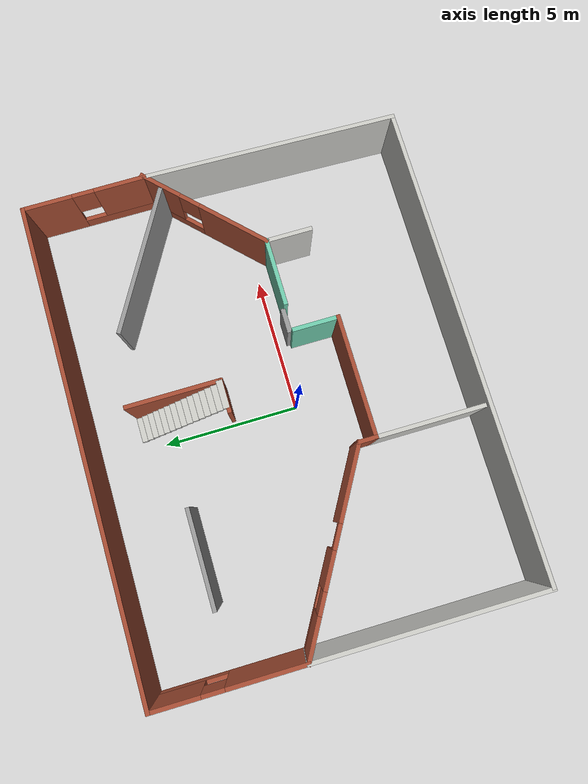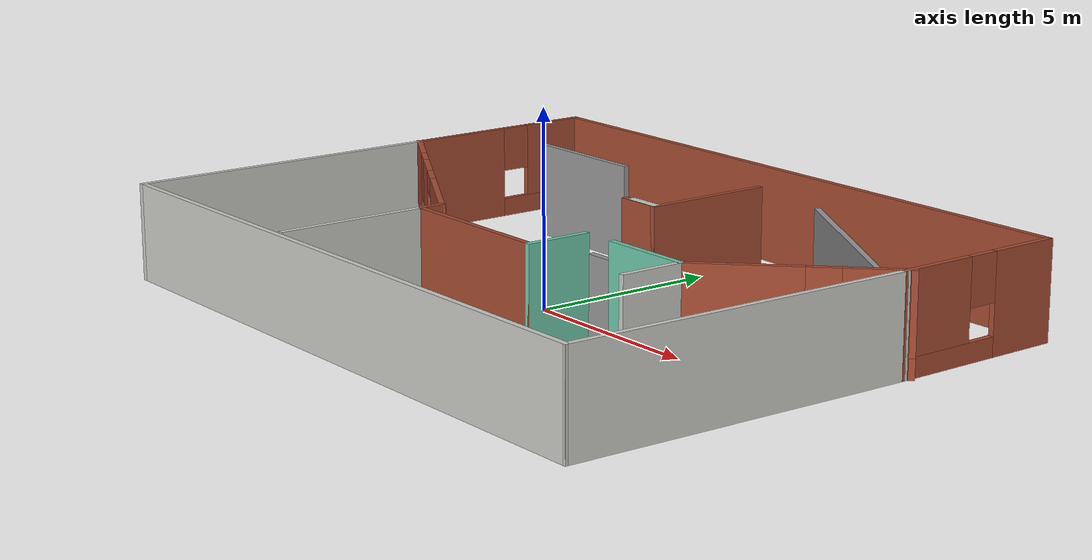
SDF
<?xml version='1.0'?>
<sdf version='1.7'>
  <model name='CommandCenter'>
    <pose>0.445014 0.613985 0 0 -0 0</pose>
    <link name='Door_0'>
      <collision name='Door_0_Collision'>
        <geometry>
          <box>
            <size>0.9 0.17 2</size>
          </box>
        </geometry>
        <pose>0 0 1 0 -0 0</pose>
      </collision>
      <visual name='Door_0_Visual'>
        <pose>0 0 1 0 -0 0</pose>
        <geometry>
          <box>
            <size>0.9 0.17 2</size>
          </box>
        </geometry>
        <material>
          <script>
            <uri>file://media/materials/scripts/gazebo.material</uri>
            <name>Gazebo/Grey</name>
          </script>
        </material>
      </visual>
      <pose>2.38096 -1.04529 0 0 -0 0</pose>
    </link>
    <link name='Stairs_0'>
      <visual name='Stairs_0_Visual_0'>
        <pose>0.377201 5.07332 0.083333 0 -0 0</pose>
        <geometry>
          <box>
            <size>1 0.233333 0.166667</size>
          </box>
        </geometry>
        <material>
          <script>
            <uri>file://media/materials/scripts/gazebo.material</uri>
            <name>Gazebo/CeilingTiled</name>
          </script>
          <ambient>1 1 1 1</ambient>
        </material>
        <meta>
          <layer>0</layer>
        </meta>
      </visual>
      <collision name='Stairs_0_Collision_0'>
        <geometry>
          <box>
            <size>1 0.233333 0.166667</size>
          </box>
        </geometry>
        <pose>0.377201 5.07332 0.083333 0 -0 0</pose>
      </collision>
      <visual name='Stairs_0_Visual_1'>
        <pose>0.377201 4.83999 0.25 0 -0 0</pose>
        <geometry>
          <box>
            <size>1 0.233333 0.166667</size>
          </box>
        </geometry>
        <material>
          <script>
            <uri>file://media/materials/scripts/gazebo.material</uri>
            <name>Gazebo/CeilingTiled</name>
          </script>
          <ambient>1 1 1 1</ambient>
        </material>
        <meta>
          <layer>0</layer>
        </meta>
      </visual>
      <collision name='Stairs_0_Collision_1'>
        <geometry>
          <box>
            <size>1 0.233333 0.166667</size>
          </box>
        </geometry>
        <pose>0.377201 4.83999 0.25 0 -0 0</pose>
      </collision>
      <visual name='Stairs_0_Visual_2'>
        <pose>0.377201 4.60666 0.416667 0 -0 0</pose>
        <geometry>
          <box>
            <size>1 0.233333 0.166667</size>
          </box>
        </geometry>
        <material>
          <script>
            <uri>file://media/materials/scripts/gazebo.material</uri>
            <name>Gazebo/CeilingTiled</name>
          </script>
          <ambient>1 1 1 1</ambient>
        </material>
        <meta>
          <layer>0</layer>
        </meta>
      </visual>
      <collision name='Stairs_0_Collision_2'>
        <geometry>
          <box>
            <size>1 0.233333 0.166667</size>
          </box>
        </geometry>
        <pose>0.377201 4.60666 0.416667 0 -0 0</pose>
      </collision>
      <visual name='Stairs_0_Visual_3'>
        <pose>0.377201 4.37333 0.583333 0 -0 0</pose>
        <geometry>
          <box>
            <size>1 0.233333 0.166667</size>
          </box>
        </geometry>
        <material>
          <script>
            <uri>file://media/materials/scripts/gazebo.material</uri>
            <name>Gazebo/CeilingTiled</name>
          </script>
          <ambient>1 1 1 1</ambient>
        </material>
        <meta>
          <layer>0</layer>
        </meta>
      </visual>
      <collision name='Stairs_0_Collision_3'>
        <geometry>
          <box>
            <size>1 0.233333 0.166667</size>
          </box>
        </geometry>
        <pose>0.377201 4.37333 0.583333 0 -0 0</pose>
      </collision>
      <visual name='Stairs_0_Visual_4'>
        <pose>0.377201 4.13999 0.75 0 -0 0</pose>
        <geometry>
          <box>
            <size>1 0.233333 0.166667</size>
          </box>
        </geometry>
        <material>
          <script>
            <uri>file://media/materials/scripts/gazebo.material</uri>
            <name>Gazebo/CeilingTiled</name>
          </script>
          <ambient>1 1 1 1</ambient>
        </material>
        <meta>
          <layer>0</layer>
        </meta>
      </visual>
      <collision name='Stairs_0_Collision_4'>
        <geometry>
          <box>
            <size>1 0.233333 0.166667</size>
          </box>
        </geometry>
        <pose>0.377201 4.13999 0.75 0 -0 0</pose>
      </collision>
      <visual name='Stairs_0_Visual_5'>
        <pose>0.377201 3.90666 0.916667 0 -0 0</pose>
        <geometry>
          <box>
            <size>1 0.233333 0.166667</size>
          </box>
        </geometry>
        <material>
          <script>
            <uri>file://media/materials/scripts/gazebo.material</uri>
            <name>Gazebo/CeilingTiled</name>
          </script>
          <ambient>1 1 1 1</ambient>
        </material>
        <meta>
          <layer>0</layer>
        </meta>
      </visual>
      <collision name='Stairs_0_Collision_5'>
        <geometry>
          <box>
            <size>1 0.233333 0.166667</size>
          </box>
        </geometry>
        <pose>0.377201 3.90666 0.916667 0 -0 0</pose>
      </collision>
      <visual name='Stairs_0_Visual_6'>
        <pose>0.377201 3.67333 1.08333 0 -0 0</pose>
        <geometry>
          <box>
            <size>1 0.233333 0.166667</size>
          </box>
        </geometry>
        <material>
          <script>
            <uri>file://media/materials/scripts/gazebo.material</uri>
            <name>Gazebo/CeilingTiled</name>
          </script>
          <ambient>1 1 1 1</ambient>
        </material>
        <meta>
          <layer>0</layer>
        </meta>
      </visual>
      <collision name='Stairs_0_Collision_6'>
        <geometry>
          <box>
            <size>1 0.233333 0.166667</size>
          </box>
        </geometry>
        <pose>0.377201 3.67333 1.08333 0 -0 0</pose>
      </collision>
      <visual name='Stairs_0_Visual_7'>
        <pose>0.377201 3.43999 1.25 0 -0 0</pose>
        <geometry>
          <box>
            <size>1 0.233333 0.166667</size>
          </box>
        </geometry>
        <material>
          <script>
            <uri>file://media/materials/scripts/gazebo.material</uri>
            <name>Gazebo/CeilingTiled</name>
          </script>
          <ambient>1 1 1 1</ambient>
        </material>
        <meta>
          <layer>0</layer>
        </meta>
      </visual>
      <collision name='Stairs_0_Collision_7'>
        <geometry>
          <box>
            <size>1 0.233333 0.166667</size>
          </box>
        </geometry>
        <pose>0.377201 3.43999 1.25 0 -0 0</pose>
      </collision>
      <visual name='Stairs_0_Visual_8'>
        <pose>0.377201 3.20666 1.41667 0 -0 0</pose>
        <geometry>
          <box>
            <size>1 0.233333 0.166667</size>
          </box>
        </geometry>
        <material>
          <script>
            <uri>file://media/materials/scripts/gazebo.material</uri>
            <name>Gazebo/CeilingTiled</name>
          </script>
          <ambient>1 1 1 1</ambient>
        </material>
        <meta>
          <layer>0</layer>
        </meta>
      </visual>
      <collision name='Stairs_0_Collision_8'>
        <geometry>
          <box>
            <size>1 0.233333 0.166667</size>
          </box>
        </geometry>
        <pose>0.377201 3.20666 1.41667 0 -0 0</pose>
      </collision>
      <visual name='Stairs_0_Visual_9'>
        <pose>0.377201 2.97332 1.58333 0 -0 0</pose>
        <geometry>
          <box>
            <size>1 0.233333 0.166667</size>
          </box>
        </geometry>
        <material>
          <script>
            <uri>file://media/materials/scripts/gazebo.material</uri>
            <name>Gazebo/CeilingTiled</name>
          </script>
          <ambient>1 1 1 1</ambient>
        </material>
        <meta>
          <layer>0</layer>
        </meta>
      </visual>
      <collision name='Stairs_0_Collision_9'>
        <geometry>
          <box>
            <size>1 0.233333 0.166667</size>
          </box>
        </geometry>
        <pose>0.377201 2.97332 1.58333 0 -0 0</pose>
      </collision>
      <visual name='Stairs_0_Visual_10'>
        <pose>0.377201 2.73999 1.75 0 -0 0</pose>
        <geometry>
          <box>
            <size>1 0.233333 0.166667</size>
          </box>
        </geometry>
        <material>
          <script>
            <uri>file://media/materials/scripts/gazebo.material</uri>
            <name>Gazebo/CeilingTiled</name>
          </script>
          <ambient>1 1 1 1</ambient>
        </material>
        <meta>
          <layer>0</layer>
        </meta>
      </visual>
      <collision name='Stairs_0_Collision_10'>
        <geometry>
          <box>
            <size>1 0.233333 0.166667</size>
          </box>
        </geometry>
        <pose>0.377201 2.73999 1.75 0 -0 0</pose>
      </collision>
      <visual name='Stairs_0_Visual_11'>
        <pose>0.377201 2.50666 1.91667 0 -0 0</pose>
        <geometry>
          <box>
            <size>1 0.233333 0.166667</size>
          </box>
        </geometry>
        <material>
          <script>
            <uri>file://media/materials/scripts/gazebo.material</uri>
            <name>Gazebo/CeilingTiled</name>
          </script>
          <ambient>1 1 1 1</ambient>
        </material>
        <meta>
          <layer>0</layer>
        </meta>
      </visual>
      <collision name='Stairs_0_Collision_11'>
        <geometry>
          <box>
            <size>1 0.233333 0.166667</size>
          </box>
        </geometry>
        <pose>0.377201 2.50666 1.91667 0 -0 0</pose>
      </collision>
      <visual name='Stairs_0_Visual_12'>
        <pose>0.377201 2.27332 2.08333 0 -0 0</pose>
        <geometry>
          <box>
            <size>1 0.233333 0.166667</size>
          </box>
        </geometry>
        <material>
          <script>
            <uri>file://media/materials/scripts/gazebo.material</uri>
            <name>Gazebo/CeilingTiled</name>
          </script>
          <ambient>1 1 1 1</ambient>
        </material>
        <meta>
          <layer>0</layer>
        </meta>
      </visual>
      <collision name='Stairs_0_Collision_12'>
        <geometry>
          <box>
            <size>1 0.233333 0.166667</size>
          </box>
        </geometry>
        <pose>0.377201 2.27332 2.08333 0 -0 0</pose>
      </collision>
      <visual name='Stairs_0_Visual_13'>
        <pose>0.377201 2.03999 2.25 0 -0 0</pose>
        <geometry>
          <box>
            <size>1 0.233333 0.166667</size>
          </box>
        </geometry>
        <material>
          <script>
            <uri>file://media/materials/scripts/gazebo.material</uri>
            <name>Gazebo/CeilingTiled</name>
          </script>
          <ambient>1 1 1 1</ambient>
        </material>
        <meta>
          <layer>0</layer>
        </meta>
      </visual>
      <collision name='Stairs_0_Collision_13'>
        <geometry>
          <box>
            <size>1 0.233333 0.166667</size>
          </box>
        </geometry>
        <pose>0.377201 2.03999 2.25 0 -0 0</pose>
      </collision>
      <visual name='Stairs_0_Visual_14'>
        <pose>0.377201 1.80666 2.41667 0 -0 0</pose>
        <geometry>
          <box>
            <size>1 0.233333 0.166667</size>
          </box>
        </geometry>
        <material>
          <script>
            <uri>file://media/materials/scripts/gazebo.material</uri>
            <name>Gazebo/CeilingTiled</name>
          </script>
          <ambient>1 1 1 1</ambient>
        </material>
        <meta>
          <layer>0</layer>
        </meta>
      </visual>
      <collision name='Stairs_0_Collision_14'>
        <geometry>
          <box>
            <size>1 0.233333 0.166667</size>
          </box>
        </geometry>
        <pose>0.377201 1.80666 2.41667 0 -0 0</pose>
      </collision>
    </link>
    <link name='Wall_0'>
      <collision name='Wall_0_Collision'>
        <geometry>
          <box>
            <size>0.75 0.15 2.5</size>
          </box>
        </geometry>
        <pose>0 0 1.25 0 -0 0</pose>
      </collision>
      <visual name='Wall_0_Visual'>
        <pose>0 0 1.25 0 -0 0</pose>
        <geometry>
          <box>
            <size>0.75 0.15 2.5</size>
          </box>
        </geometry>
        <material>
          <script>
            <uri>file://media/materials/scripts/gazebo.material</uri>
            <name>Gazebo/Bricks</name>
          </script>
          <ambient>0.435294 0.796078 0.67451 1</ambient>
        </material>
        <meta>
          <layer>0</layer>
        </meta>
      </visual>
      <pose>-2.47501 -2.47398 0 0 -0 -1.5708</pose>
    </link>
    <link name='Wall_1'>
      <collision name='Wall_1_Collision'>
        <geometry>
          <box>
            <size>4.5 0.15 2.5</size>
          </box>
        </geometry>
        <pose>0 0 1.25 0 -0 0</pose>
      </collision>
      <visual name='Wall_1_Visual'>
        <pose>0 0 1.25 0 -0 0</pose>
        <geometry>
          <box>
            <size>4.5 0.15 2.5</size>
          </box>
        </geometry>
        <material>
          <script>
            <uri>file://media/materials/scripts/gazebo.material</uri>
            <name>Gazebo/Bricks</name>
          </script>
          <ambient>0.435294 0.796078 0.67451 1</ambient>
        </material>
        <meta>
          <layer>0</layer>
        </meta>
      </visual>
      <pose>-0.300014 -2.77399 0 0 -0 0</pose>
    </link>
    <link name='Wall_10'>
      <pose>-8.8403 4.17601 0 0 -0 1.5708</pose>
      <visual name='Wall_10_Visual_0'>
        <pose>-1.31595 0 1.25 0 -0 0</pose>
        <geometry>
          <box>
            <size>2.8681 0.15 2.5</size>
          </box>
        </geometry>
        <material>
          <script>
            <uri>file://media/materials/scripts/gazebo.material</uri>
            <name>Gazebo/Bricks</name>
          </script>
          <ambient>0.435294 0.796078 0.67451 1</ambient>
        </material>
        <meta>
          <layer>0</layer>
        </meta>
      </visual>
      <collision name='Wall_10_Collision_0'>
        <geometry>
          <box>
            <size>2.8681 0.15 2.5</size>
          </box>
        </geometry>
        <pose>-1.31595 0 1.25 0 -0 0</pose>
      </collision>
      <visual name='Wall_10_Visual_1'>
        <pose>1.43405 0 0.25 0 -0 0</pose>
        <geometry>
          <box>
            <size>2.6319 0.15 0.5</size>
          </box>
        </geometry>
        <material>
          <script>
            <uri>file://media/materials/scripts/gazebo.material</uri>
            <name>Gazebo/Bricks</name>
          </script>
          <ambient>0.435294 0.796078 0.67451 1</ambient>
        </material>
        <meta>
          <layer>0</layer>
        </meta>
      </visual>
      <collision name='Wall_10_Collision_1'>
        <geometry>
          <box>
            <size>2.6319 0.15 0.5</size>
          </box>
        </geometry>
        <pose>1.43405 0 0.25 0 -0 0</pose>
      </collision>
      <visual name='Wall_10_Visual_2'>
        <pose>1.83405 0 1.5 0 -0 0</pose>
        <geometry>
          <box>
            <size>1.8319 0.15 2</size>
          </box>
        </geometry>
        <material>
          <script>
            <uri>file://media/materials/scripts/gazebo.material</uri>
            <name>Gazebo/Bricks</name>
          </script>
          <ambient>0.435294 0.796078 0.67451 1</ambient>
        </material>
        <meta>
          <layer>0</layer>
        </meta>
      </visual>
      <collision name='Wall_10_Collision_2'>
        <geometry>
          <box>
            <size>1.8319 0.15 2</size>
          </box>
        </geometry>
        <pose>1.83405 0 1.5 0 -0 0</pose>
      </collision>
      <visual name='Wall_10_Visual_3'>
        <pose>0.518099 0 1.9 0 -0 0</pose>
        <geometry>
          <box>
            <size>0.8 0.15 1.2</size>
          </box>
        </geometry>
        <material>
          <script>
            <uri>file://media/materials/scripts/gazebo.material</uri>
            <name>Gazebo/Bricks</name>
          </script>
          <ambient>0.435294 0.796078 0.67451 1</ambient>
        </material>
        <meta>
          <layer>0</layer>
        </meta>
      </visual>
      <collision name='Wall_10_Collision_3'>
        <geometry>
          <box>
            <size>0.8 0.15 1.2</size>
          </box>
        </geometry>
        <pose>0.518099 0 1.9 0 -0 0</pose>
      </collision>
    </link>
    <link name='Wall_11'>
      <collision name='Wall_11_Collision'>
        <geometry>
          <box>
            <size>17.75 0.15 2.5</size>
          </box>
        </geometry>
        <pose>0 0 1.25 0 -0 0</pose>
      </collision>
      <visual name='Wall_11_Visual'>
        <pose>0 0 1.25 0 -0 0</pose>
        <geometry>
          <box>
            <size>17.75 0.15 2.5</size>
          </box>
        </geometry>
        <material>
          <script>
            <uri>file://media/materials/scripts/gazebo.material</uri>
            <name>Gazebo/Bricks</name>
          </script>
          <ambient>0.435294 0.796078 0.67451 1</ambient>
        </material>
        <meta>
          <layer>0</layer>
        </meta>
      </visual>
      <pose>-0.040301 6.85102 0 0 -0 0</pose>
    </link>
    <link name='Wall_12'>
      <pose>8.7597 4.55101 0 0 -0 -1.5708</pose>
      <visual name='Wall_12_Visual_0'>
        <pose>-1.43882 0 1.25 0 -0 0</pose>
        <geometry>
          <box>
            <size>1.87236 0.15 2.5</size>
          </box>
        </geometry>
        <material>
          <script>
            <uri>file://media/materials/scripts/gazebo.material</uri>
            <name>Gazebo/Bricks</name>
          </script>
          <ambient>0.435294 0.796078 0.67451 1</ambient>
        </material>
        <meta>
          <layer>0</layer>
        </meta>
      </visual>
      <collision name='Wall_12_Collision_0'>
        <geometry>
          <box>
            <size>1.87236 0.15 2.5</size>
          </box>
        </geometry>
        <pose>-1.43882 0 1.25 0 -0 0</pose>
      </collision>
      <visual name='Wall_12_Visual_1'>
        <pose>0.936178 0 0.25 0 -0 0</pose>
        <geometry>
          <box>
            <size>2.87764 0.15 0.5</size>
          </box>
        </geometry>
        <material>
          <script>
            <uri>file://media/materials/scripts/gazebo.material</uri>
            <name>Gazebo/Bricks</name>
          </script>
          <ambient>0.435294 0.796078 0.67451 1</ambient>
        </material>
        <meta>
          <layer>0</layer>
        </meta>
      </visual>
      <collision name='Wall_12_Collision_1'>
        <geometry>
          <box>
            <size>2.87764 0.15 0.5</size>
          </box>
        </geometry>
        <pose>0.936178 0 0.25 0 -0 0</pose>
      </collision>
      <visual name='Wall_12_Visual_2'>
        <pose>1.33618 0 1.5 0 -0 0</pose>
        <geometry>
          <box>
            <size>2.07764 0.15 2</size>
          </box>
        </geometry>
        <material>
          <script>
            <uri>file://media/materials/scripts/gazebo.material</uri>
            <name>Gazebo/Bricks</name>
          </script>
          <ambient>0.435294 0.796078 0.67451 1</ambient>
        </material>
        <meta>
          <layer>0</layer>
        </meta>
      </visual>
      <collision name='Wall_12_Collision_2'>
        <geometry>
          <box>
            <size>2.07764 0.15 2</size>
          </box>
        </geometry>
        <pose>1.33618 0 1.5 0 -0 0</pose>
      </collision>
      <visual name='Wall_12_Visual_3'>
        <pose>-0.102643 0 1.9 0 -0 0</pose>
        <geometry>
          <box>
            <size>0.8 0.15 1.2</size>
          </box>
        </geometry>
        <material>
          <script>
            <uri>file://media/materials/scripts/gazebo.material</uri>
            <name>Gazebo/Bricks</name>
          </script>
          <ambient>0.435294 0.796078 0.67451 1</ambient>
        </material>
        <meta>
          <layer>0</layer>
        </meta>
      </visual>
      <collision name='Wall_12_Collision_3'>
        <geometry>
          <box>
            <size>0.8 0.15 1.2</size>
          </box>
        </geometry>
        <pose>-0.102643 0 1.9 0 -0 0</pose>
      </collision>
    </link>
    <link name='Wall_14'>
      <collision name='Wall_14_Collision'>
        <geometry>
          <box>
            <size>1.25 0.15 2.5</size>
          </box>
        </geometry>
        <pose>0 0 1.25 0 -0 0</pose>
      </collision>
      <visual name='Wall_14_Visual'>
        <pose>0 0 1.25 0 -0 0</pose>
        <geometry>
          <box>
            <size>1.25 0.15 2.5</size>
          </box>
        </geometry>
        <material>
          <script>
            <uri>file://media/materials/scripts/gazebo.material</uri>
            <name>Gazebo/Bricks</name>
          </script>
          <ambient>1 1 1 1</ambient>
        </material>
        <meta>
          <layer>0</layer>
        </meta>
      </visual>
      <pose>0.320367 1.74086 0 0 -0 0</pose>
    </link>
    <link name='Wall_15'>
      <collision name='Wall_15_Collision'>
        <geometry>
          <box>
            <size>3.5 0.15 2.5</size>
          </box>
        </geometry>
        <pose>0 0 1.25 0 -0 0</pose>
      </collision>
      <visual name='Wall_15_Visual'>
        <pose>0 0 1.25 0 -0 0</pose>
        <geometry>
          <box>
            <size>3.5 0.15 2.5</size>
          </box>
        </geometry>
        <material>
          <script>
            <uri>file://media/materials/scripts/gazebo.material</uri>
            <name>Gazebo/Bricks</name>
          </script>
          <ambient>1 1 1 1</ambient>
        </material>
        <meta>
          <layer>0</layer>
        </meta>
      </visual>
      <pose>0.870367 3.41586 0 0 -0 1.5708</pose>
    </link>
    <link name='Wall_17'>
      <collision name='Wall_17_Collision'>
        <geometry>
          <box>
            <size>3.5 0.15 2.5</size>
          </box>
        </geometry>
        <pose>0 0 1.25 0 -0 0</pose>
      </collision>
      <visual name='Wall_17_Visual'>
        <pose>0 0 1.25 0 -0 0</pose>
        <geometry>
          <box>
            <size>3.5 0.15 2.5</size>
          </box>
        </geometry>
        <material>
          <script>
            <uri>file://media/materials/scripts/gazebo.material</uri>
            <name>Gazebo/Grey</name>
          </script>
          <ambient>1 1 1 1</ambient>
        </material>
        <meta>
          <layer>0</layer>
        </meta>
      </visual>
      <pose>-4.70388 3.96591 0 0 -0 0</pose>
    </link>
    <link name='Wall_19'>
      <collision name='Wall_19_Collision'>
        <geometry>
          <box>
            <size>5.5 0.15 2.5</size>
          </box>
        </geometry>
        <pose>0 0 1.25 0 -0 0</pose>
      </collision>
      <visual name='Wall_19_Visual'>
        <pose>0 0 1.25 0 -0 0</pose>
        <geometry>
          <box>
            <size>5.5 0.15 2.5</size>
          </box>
        </geometry>
        <material>
          <script>
            <uri>file://media/materials/scripts/gazebo.material</uri>
            <name>Gazebo/Grey</name>
          </script>
          <ambient>1 1 1 1</ambient>
        </material>
        <meta>
          <layer>0</layer>
        </meta>
      </visual>
      <pose>5.8089 3.31616 0 0 -0 -0.523599</pose>
    </link>
    <link name='Wall_2'>
      <collision name='Wall_2_Collision'>
        <geometry>
          <box>
            <size>1.75 0.15 2.5</size>
          </box>
        </geometry>
        <pose>0 0 1.25 0 -0 0</pose>
      </collision>
      <visual name='Wall_2_Visual'>
        <pose>0 0 1.25 0 -0 0</pose>
        <geometry>
          <box>
            <size>1.75 0.15 2.5</size>
          </box>
        </geometry>
        <material>
          <script>
            <uri>file://media/materials/scripts/gazebo.material</uri>
            <name>Gazebo/Grey</name>
          </script>
          <ambient>0.435294 0.796078 0.67451 1</ambient>
        </material>
        <meta>
          <layer>0</layer>
        </meta>
      </visual>
      <pose>1.87499 -1.97399 0 0 -0 1.5708</pose>
    </link>
    <link name='Wall_22'>
      <collision name='Wall_22_Collision'>
        <geometry>
          <box>
            <size>8.5 0.15 2.5</size>
          </box>
        </geometry>
        <pose>0 0 1.25 0 -0 0</pose>
      </collision>
      <visual name='Wall_22_Visual'>
        <pose>0 0 1.25 0 -0 0</pose>
        <geometry>
          <box>
            <size>8.5 0.15 2.5</size>
          </box>
        </geometry>
        <material>
          <script>
            <uri>file://media/materials/scripts/gazebo.material</uri>
            <name>Gazebo/CeilingTiled</name>
          </script>
          <ambient>0.996078 0.47451 0.0196078 1</ambient>
        </material>
        <meta>
          <layer>0</layer>
        </meta>
      </visual>
      <pose>-8.8403 -2.67399 0 0 -0 -1.5708</pose>
    </link>
    <link name='Wall_23'>
      <collision name='Wall_23_Collision'>
        <geometry>
          <box>
            <size>17.5 0.15 2.5</size>
          </box>
        </geometry>
        <pose>0 0 1.25 0 -0 0</pose>
      </collision>
      <visual name='Wall_23_Visual'>
        <pose>0 0 1.25 0 -0 0</pose>
        <geometry>
          <box>
            <size>17.5 0.15 2.5</size>
          </box>
        </geometry>
        <material>
          <script>
            <uri>file://media/materials/scripts/gazebo.material</uri>
            <name>Gazebo/CeilingTiled</name>
          </script>
          <ambient>0.996078 0.47451 0.0196078 1</ambient>
        </material>
        <meta>
          <layer>0</layer>
        </meta>
      </visual>
      <pose>-0.165301 -6.84898 0 0 -0 0</pose>
    </link>
    <link name='Wall_24'>
      <collision name='Wall_24_Collision'>
        <geometry>
          <box>
            <size>9.25343 0.15 2.5</size>
          </box>
        </geometry>
        <pose>0 0 1.25 0 -0 0</pose>
      </collision>
      <visual name='Wall_24_Visual'>
        <pose>0 0 1.25 0 -0 0</pose>
        <geometry>
          <box>
            <size>9.25343 0.15 2.5</size>
          </box>
        </geometry>
        <material>
          <script>
            <uri>file://media/materials/scripts/gazebo.material</uri>
            <name>Gazebo/CeilingTiled</name>
          </script>
          <ambient>0.996078 0.47451 0.0196078 1</ambient>
        </material>
        <meta>
          <layer>0</layer>
        </meta>
      </visual>
      <pose>8.6347 -2.29899 0 0 -0 1.54333</pose>
    </link>
    <link name='Wall_26'>
      <collision name='Wall_26_Collision'>
        <geometry>
          <box>
            <size>4 0.15 2.5</size>
          </box>
        </geometry>
        <pose>0 0 1.25 0 -0 0</pose>
      </collision>
      <visual name='Wall_26_Visual'>
        <pose>0 0 1.25 0 -0 0</pose>
        <geometry>
          <box>
            <size>4 0.15 2.5</size>
          </box>
        </geometry>
        <material>
          <script>
            <uri>file://media/materials/scripts/gazebo.material</uri>
            <name>Gazebo/CeilingTiled</name>
          </script>
          <ambient>0.996078 0.47451 0.0196078 1</ambient>
        </material>
        <meta>
          <layer>0</layer>
        </meta>
      </visual>
      <pose>-2.47501 -4.69899 0 0 -0 -1.5708</pose>
    </link>
    <link name='Wall_28'>
      <collision name='Wall_28_Collision'>
        <geometry>
          <box>
            <size>1.75 0.15 2.5</size>
          </box>
        </geometry>
        <pose>0 0 1.25 0 -0 0</pose>
      </collision>
      <visual name='Wall_28_Visual'>
        <pose>0 0 1.25 0 -0 0</pose>
        <geometry>
          <box>
            <size>1.75 0.15 2.5</size>
          </box>
        </geometry>
        <material>
          <script>
            <uri>file://media/materials/scripts/gazebo.material</uri>
            <name>Gazebo/CeilingTiled</name>
          </script>
          <ambient>0.996078 0.47451 0.0196078 1</ambient>
        </material>
        <meta>
          <layer>0</layer>
        </meta>
      </visual>
      <pose>5.23044 -1.95083 0 0 -0 -1.5708</pose>
    </link>
    <link name='Wall_4'>
      <collision name='Wall_4_Collision'>
        <geometry>
          <box>
            <size>2.5 0.15 2.5</size>
          </box>
        </geometry>
        <pose>0 0 1.25 0 -0 0</pose>
      </collision>
      <visual name='Wall_4_Visual'>
        <pose>0 0 1.25 0 -0 0</pose>
        <geometry>
          <box>
            <size>2.5 0.15 2.5</size>
          </box>
        </geometry>
        <material>
          <script>
            <uri>file://media/materials/scripts/gazebo.material</uri>
            <name>Gazebo/Grey</name>
          </script>
          <ambient>0.435294 0.796078 0.67451 1</ambient>
        </material>
        <meta>
          <layer>0</layer>
        </meta>
      </visual>
      <pose>4.05544 -1.15083 0 0 -0 3.14159</pose>
    </link>
    <link name='Wall_6'>
      <pose>7.03357 0.652295 0 0 -0 0.785398</pose>
      <visual name='Wall_6_Visual_0'>
        <pose>-1.22111 0 1.25 0 -0 0</pose>
        <geometry>
          <box>
            <size>2.80778 0.15 2.5</size>
          </box>
        </geometry>
        <material>
          <script>
            <uri>file://media/materials/scripts/gazebo.material</uri>
            <name>Gazebo/Bricks</name>
          </script>
          <ambient>0.435294 0.796078 0.67451 1</ambient>
        </material>
        <meta>
          <layer>0</layer>
        </meta>
      </visual>
      <collision name='Wall_6_Collision_0'>
        <geometry>
          <box>
            <size>2.80778 0.15 2.5</size>
          </box>
        </geometry>
        <pose>-1.22111 0 1.25 0 -0 0</pose>
      </collision>
      <visual name='Wall_6_Visual_1'>
        <pose>1.40389 0 0.25 0 -0 0</pose>
        <geometry>
          <box>
            <size>2.44222 0.15 0.5</size>
          </box>
        </geometry>
        <material>
          <script>
            <uri>file://media/materials/scripts/gazebo.material</uri>
            <name>Gazebo/Bricks</name>
          </script>
          <ambient>0.435294 0.796078 0.67451 1</ambient>
        </material>
        <meta>
          <layer>0</layer>
        </meta>
      </visual>
      <collision name='Wall_6_Collision_1'>
        <geometry>
          <box>
            <size>2.44222 0.15 0.5</size>
          </box>
        </geometry>
        <pose>1.40389 0 0.25 0 -0 0</pose>
      </collision>
      <visual name='Wall_6_Visual_2'>
        <pose>1.80389 0 1.5 0 -0 0</pose>
        <geometry>
          <box>
            <size>1.64222 0.15 2</size>
          </box>
        </geometry>
        <material>
          <script>
            <uri>file://media/materials/scripts/gazebo.material</uri>
            <name>Gazebo/Bricks</name>
          </script>
          <ambient>0.435294 0.796078 0.67451 1</ambient>
        </material>
        <meta>
          <layer>0</layer>
        </meta>
      </visual>
      <collision name='Wall_6_Collision_2'>
        <geometry>
          <box>
            <size>1.64222 0.15 2</size>
          </box>
        </geometry>
        <pose>1.80389 0 1.5 0 -0 0</pose>
      </collision>
      <visual name='Wall_6_Visual_3'>
        <pose>0.582782 0 1.9 0 -0 0</pose>
        <geometry>
          <box>
            <size>0.8 0.15 1.2</size>
          </box>
        </geometry>
        <material>
          <script>
            <uri>file://media/materials/scripts/gazebo.material</uri>
            <name>Gazebo/Bricks</name>
          </script>
          <ambient>0.435294 0.796078 0.67451 1</ambient>
        </material>
        <meta>
          <layer>0</layer>
        </meta>
      </visual>
      <collision name='Wall_6_Collision_3'>
        <geometry>
          <box>
            <size>0.8 0.15 1.2</size>
          </box>
        </geometry>
        <pose>0.582782 0 1.9 0 -0 0</pose>
      </collision>
    </link>
    <link name='Wall_8'>
      <pose>-5.65766 -0.336485 0 0 -0 2.61799</pose>
      <visual name='Wall_8_Visual_0'>
        <pose>-2.32524 0 1.25 0 -0 0</pose>
        <geometry>
          <box>
            <size>2.84952 0.15 2.5</size>
          </box>
        </geometry>
        <material>
          <script>
            <uri>file://media/materials/scripts/gazebo.material</uri>
            <name>Gazebo/Bricks</name>
          </script>
          <ambient>0.435294 0.796078 0.67451 1</ambient>
        </material>
        <meta>
          <layer>0</layer>
        </meta>
      </visual>
      <collision name='Wall_8_Collision_0'>
        <geometry>
          <box>
            <size>2.84952 0.15 2.5</size>
          </box>
        </geometry>
        <pose>-2.32524 0 1.25 0 -0 0</pose>
      </collision>
      <visual name='Wall_8_Visual_1'>
        <pose>0.678332 0 1.25 0 -0 0</pose>
        <geometry>
          <box>
            <size>1.35763 0.15 2.5</size>
          </box>
        </geometry>
        <material>
          <script>
            <uri>file://media/materials/scripts/gazebo.material</uri>
            <name>Gazebo/Bricks</name>
          </script>
          <ambient>0.435294 0.796078 0.67451 1</ambient>
        </material>
        <meta>
          <layer>0</layer>
        </meta>
      </visual>
      <collision name='Wall_8_Collision_1'>
        <geometry>
          <box>
            <size>1.35763 0.15 2.5</size>
          </box>
        </geometry>
        <pose>0.678332 0 1.25 0 -0 0</pose>
      </collision>
      <visual name='Wall_8_Visual_2'>
        <pose>2.55357 0 0.25 0 -0 0</pose>
        <geometry>
          <box>
            <size>2.39285 0.15 0.5</size>
          </box>
        </geometry>
        <material>
          <script>
            <uri>file://media/materials/scripts/gazebo.material</uri>
            <name>Gazebo/Bricks</name>
          </script>
          <ambient>0.435294 0.796078 0.67451 1</ambient>
        </material>
        <meta>
          <layer>0</layer>
        </meta>
      </visual>
      <collision name='Wall_8_Collision_2'>
        <geometry>
          <box>
            <size>2.39285 0.15 0.5</size>
          </box>
        </geometry>
        <pose>2.55357 0 0.25 0 -0 0</pose>
      </collision>
      <visual name='Wall_8_Visual_3'>
        <pose>2.95357 0 1.5 0 -0 0</pose>
        <geometry>
          <box>
            <size>1.59285 0.15 2</size>
          </box>
        </geometry>
        <material>
          <script>
            <uri>file://media/materials/scripts/gazebo.material</uri>
            <name>Gazebo/Bricks</name>
          </script>
          <ambient>0.435294 0.796078 0.67451 1</ambient>
        </material>
        <meta>
          <layer>0</layer>
        </meta>
      </visual>
      <collision name='Wall_8_Collision_3'>
        <geometry>
          <box>
            <size>1.59285 0.15 2</size>
          </box>
        </geometry>
        <pose>2.95357 0 1.5 0 -0 0</pose>
      </collision>
      <visual name='Wall_8_Visual_4'>
        <pose>1.75715 0 1.9 0 -0 0</pose>
        <geometry>
          <box>
            <size>0.8 0.15 1.2</size>
          </box>
        </geometry>
        <material>
          <script>
            <uri>file://media/materials/scripts/gazebo.material</uri>
            <name>Gazebo/Bricks</name>
          </script>
          <ambient>0.435294 0.796078 0.67451 1</ambient>
        </material>
        <meta>
          <layer>0</layer>
        </meta>
      </visual>
      <collision name='Wall_8_Collision_4'>
        <geometry>
          <box>
            <size>0.8 0.15 1.2</size>
          </box>
        </geometry>
        <pose>1.75715 0 1.9 0 -0 0</pose>
      </collision>
      <visual name='Wall_8_Visual_5'>
        <pose>-0.450483 0 2.25 0 -0 0</pose>
        <geometry>
          <box>
            <size>0.9 0.15 0.5</size>
          </box>
        </geometry>
        <material>
          <script>
            <uri>file://media/materials/scripts/gazebo.material</uri>
            <name>Gazebo/Bricks</name>
          </script>
          <ambient>0.435294 0.796078 0.67451 1</ambient>
        </material>
        <meta>
          <layer>0</layer>
        </meta>
      </visual>
      <collision name='Wall_8_Collision_5'>
        <geometry>
          <box>
            <size>0.9 0.15 0.5</size>
          </box>
        </geometry>
        <pose>-0.450483 0 2.25 0 -0 0</pose>
      </collision>
    </link>
    <static>1</static>
  </model>
</sdf>
